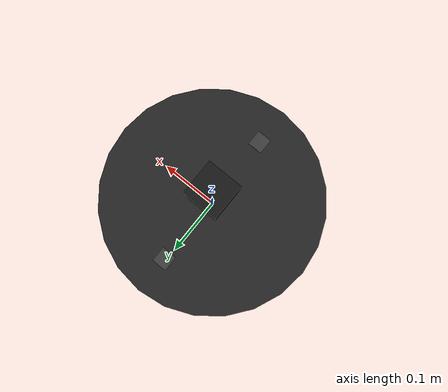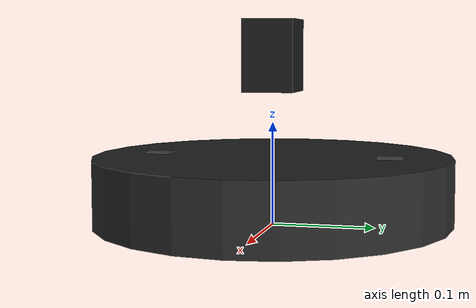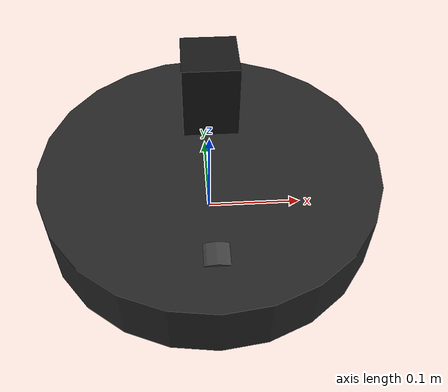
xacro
<?xml version="1.0"?>
<robot name="turtlebot2" xmlns:xacro="http://www.ros.org/wiki/xacro">

  <xacro:include filename="$(find turtlebot2_description)/urdf/turtlebot2.gazebo.xacro"/>

  <!-- Kobuki dimensions -->
  <xacro:property name="base_radius"   value="0.175"/>
  <xacro:property name="base_height"   value="0.065"/>
  <xacro:property name="wheel_radius"  value="0.035"/>
  <xacro:property name="wheel_width"   value="0.025"/>
  <xacro:property name="wheel_sep"     value="0.230"/>
  <xacro:property name="caster_radius" value="0.018"/>
  <!-- Laser mounted 0.13m above base_link centre -->
  <xacro:property name="laser_z"       value="0.130"/>

  <!-- ════════════════════════════════════════════
       base_footprint  (root, ground-projected frame)
       ════════════════════════════════════════════ -->
  <link name="base_footprint"/>

  <joint name="base_joint" type="fixed">
    <origin xyz="0 0 ${wheel_radius}" rpy="0 0 0"/>
    <parent link="base_footprint"/>
    <child  link="base_link"/>
  </joint>

  <!-- ════════════════
       Chassis (cylinder)
       ════════════════ -->
  <link name="base_link">
    <visual>
      <geometry><cylinder radius="${base_radius}" length="${base_height}"/></geometry>
      <origin xyz="0 0 0" rpy="0 0 0"/>
      <material name="kobuki_dark"><color rgba="0.15 0.15 0.15 1.0"/></material>
    </visual>
    <collision>
      <geometry><cylinder radius="${base_radius}" length="${base_height}"/></geometry>
      <origin xyz="0 0 0" rpy="0 0 0"/>
    </collision>
    <inertial>
      <mass value="2.4"/>
      <origin xyz="0 0 0"/>
      <!-- I = m*r^2/2 for z, m*(3r^2+h^2)/12 for x/y -->
      <inertia ixx="0.019995" ixy="0" ixz="0"
               iyy="0.019995" iyz="0"
               izz="0.036750"/>
    </inertial>
  </link>

  <!-- ════════════
       Left wheel
       ════════════ -->
  <joint name="wheel_left_joint" type="continuous">
    <origin xyz="0 ${wheel_sep/2} 0" rpy="${-pi/2} 0 0"/>
    <parent link="base_link"/>
    <child  link="wheel_left_link"/>
    <axis xyz="0 0 1"/>
  </joint>
  <link name="wheel_left_link">
    <visual>
      <geometry><cylinder radius="${wheel_radius}" length="${wheel_width}"/></geometry>
      <material name="kobuki_wheel"><color rgba="0.25 0.25 0.25 1.0"/></material>
    </visual>
    <collision>
      <geometry><cylinder radius="${wheel_radius}" length="${wheel_width}"/></geometry>
    </collision>
    <inertial>
      <mass value="0.01"/>
      <inertia ixx="1e-5" ixy="0" ixz="0" iyy="1e-5" iyz="0" izz="1e-5"/>
    </inertial>
  </link>

  <!-- ═════════════
       Right wheel
       ═════════════ -->
  <joint name="wheel_right_joint" type="continuous">
    <origin xyz="0 ${-wheel_sep/2} 0" rpy="${pi/2} 0 0"/>
    <parent link="base_link"/>
    <child  link="wheel_right_link"/>
    <axis xyz="0 0 1"/>
  </joint>
  <link name="wheel_right_link">
    <visual>
      <geometry><cylinder radius="${wheel_radius}" length="${wheel_width}"/></geometry>
      <material name="kobuki_wheel"><color rgba="0.25 0.25 0.25 1.0"/></material>
    </visual>
    <collision>
      <geometry><cylinder radius="${wheel_radius}" length="${wheel_width}"/></geometry>
    </collision>
    <inertial>
      <mass value="0.01"/>
      <inertia ixx="1e-5" ixy="0" ixz="0" iyy="1e-5" iyz="0" izz="1e-5"/>
    </inertial>
  </link>

  <!-- ═════════════════
       Front caster ball
       ═════════════════ -->
  <joint name="caster_front_joint" type="fixed">
    <origin xyz="0.115 0 ${-wheel_radius + caster_radius}" rpy="0 0 0"/>
    <parent link="base_link"/>
    <child  link="caster_front_link"/>
  </joint>
  <link name="caster_front_link">
    <collision>
      <geometry><sphere radius="${caster_radius}"/></geometry>
    </collision>
    <inertial>
      <mass value="0.001"/>
      <inertia ixx="1e-7" ixy="0" ixz="0" iyy="1e-7" iyz="0" izz="1e-7"/>
    </inertial>
  </link>

  <!-- ════════════════
       Back caster ball
       ════════════════ -->
  <joint name="caster_back_joint" type="fixed">
    <origin xyz="-0.135 0 ${-wheel_radius + caster_radius}" rpy="0 0 0"/>
    <parent link="base_link"/>
    <child  link="caster_back_link"/>
  </joint>
  <link name="caster_back_link">
    <collision>
      <geometry><sphere radius="${caster_radius}"/></geometry>
    </collision>
    <inertial>
      <mass value="0.001"/>
      <inertia ixx="1e-7" ixy="0" ixz="0" iyy="1e-7" iyz="0" izz="1e-7"/>
    </inertial>
  </link>

  <!-- ══════════════════════════════
       Hokuyo LiDAR mount
       (frame name "laser" matches racecar convention → /scan compatible)
       ══════════════════════════════ -->
  <joint name="laser_joint" type="fixed">
    <origin xyz="0 0 ${laser_z}" rpy="0 0 0"/>
    <parent link="base_link"/>
    <child  link="laser"/>
  </joint>
  <link name="laser">
    <visual>
      <geometry><box size="0.05 0.05 0.07"/></geometry>
      <material name="hokuyo_body"><color rgba="0.1 0.1 0.1 1.0"/></material>
    </visual>
    <inertial>
      <mass value="0.1"/>
      <inertia ixx="1e-6" ixy="0" ixz="0" iyy="1e-6" iyz="0" izz="1e-6"/>
    </inertial>
  </link>

</robot>
